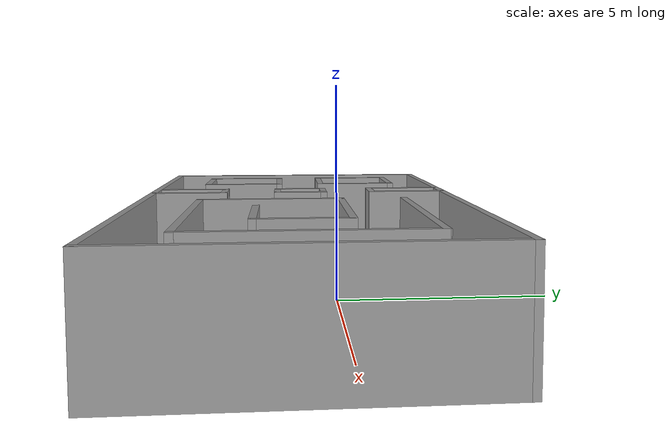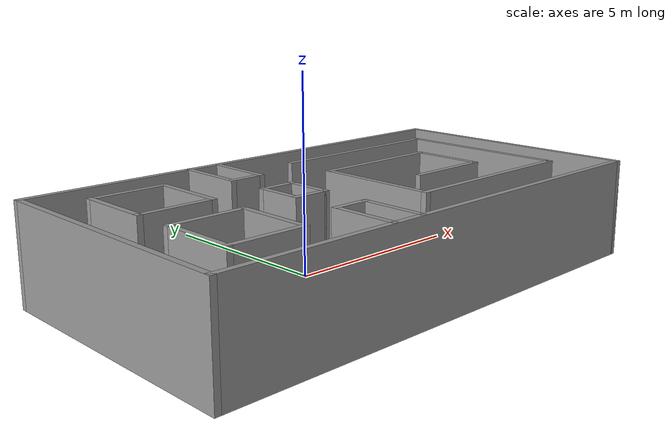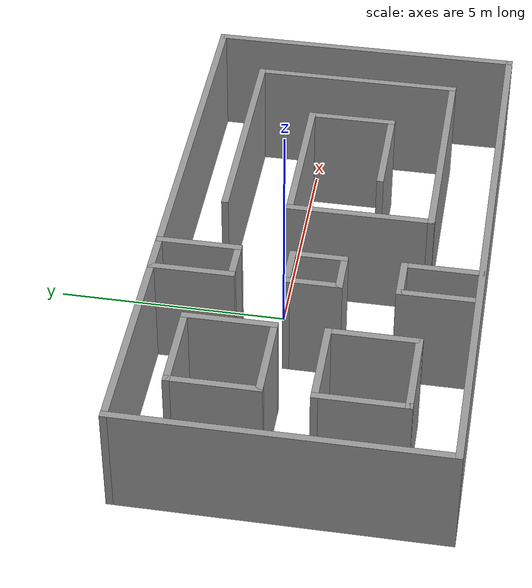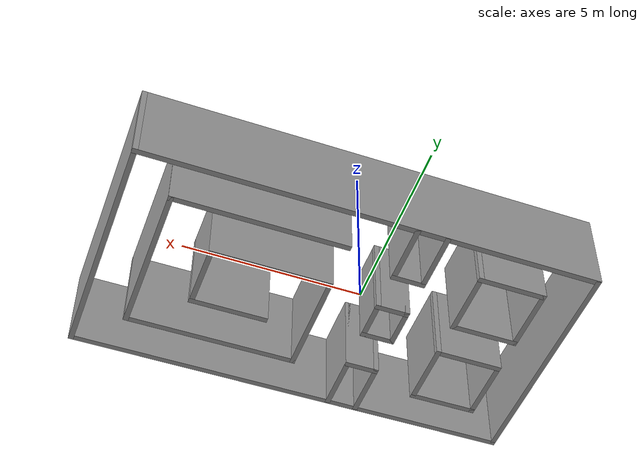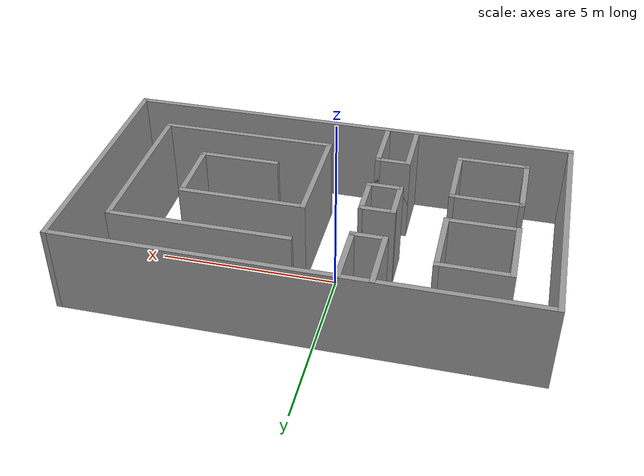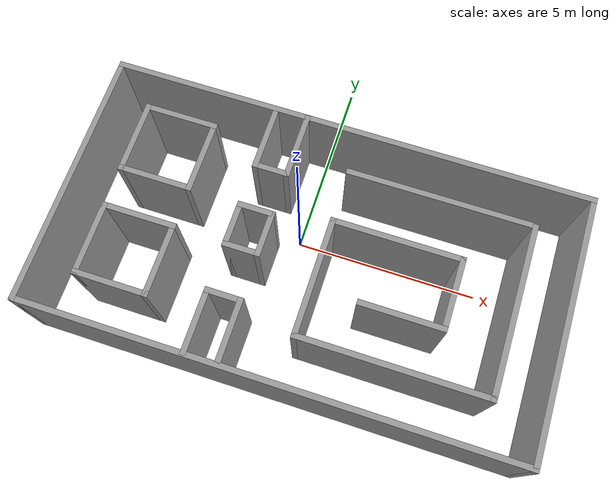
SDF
<?xml version='1.0'?>
<sdf version='1.6'>
  <model name='MazeMap'>
    <pose frame=''>0.55977 -0.836011 0 0 -0 0</pose>
    <link name='Wall_10'>
      <collision name='Wall_10_Collision'>
        <geometry>
          <box>
            <size>2 0.15 2.5</size>
          </box>
        </geometry>
        <pose frame=''>0 0 1.25 0 -0 0</pose>
      </collision>
      <visual name='Wall_10_Visual'>
        <pose frame=''>0 0 1.25 0 -0 0</pose>
        <geometry>
          <box>
            <size>2 0.15 2.5</size>
          </box>
        </geometry>
        <material>
          <script>
            <uri>file://media/materials/scripts/gazebo.material</uri>
            <name>Gazebo/Grey</name>
          </script>
          <ambient>1 1 1 1</ambient>
        </material>
      </visual>
      <pose frame=''>-3.41573 1.51218 0 0 -0 1.5708</pose>
    </link>
    <link name='Wall_11'>
      <collision name='Wall_11_Collision'>
        <geometry>
          <box>
            <size>2 0.15 2.5</size>
          </box>
        </geometry>
        <pose frame=''>0 0 1.25 0 -0 0</pose>
      </collision>
      <visual name='Wall_11_Visual'>
        <pose frame=''>0 0 1.25 0 -0 0</pose>
        <geometry>
          <box>
            <size>2 0.15 2.5</size>
          </box>
        </geometry>
        <material>
          <script>
            <uri>file://media/materials/scripts/gazebo.material</uri>
            <name>Gazebo/Grey</name>
          </script>
          <ambient>1 1 1 1</ambient>
        </material>
      </visual>
      <pose frame=''>-4.34073 2.43718 0 0 -0 3.14159</pose>
    </link>
    <link name='Wall_13'>
      <collision name='Wall_13_Collision'>
        <geometry>
          <box>
            <size>2 0.15 2.5</size>
          </box>
        </geometry>
        <pose frame=''>0 0 1.25 0 -0 0</pose>
      </collision>
      <visual name='Wall_13_Visual'>
        <pose frame=''>0 0 1.25 0 -0 0</pose>
        <geometry>
          <box>
            <size>2 0.15 2.5</size>
          </box>
        </geometry>
        <material>
          <script>
            <uri>file://media/materials/scripts/gazebo.material</uri>
            <name>Gazebo/Grey</name>
          </script>
          <ambient>1 1 1 1</ambient>
        </material>
      </visual>
      <pose frame=''>-5.26573 -1.4254 0 0 0 -1.5708</pose>
    </link>
    <link name='Wall_14'>
      <collision name='Wall_14_Collision'>
        <geometry>
          <box>
            <size>2 0.15 2.5</size>
          </box>
        </geometry>
        <pose frame=''>0 0 1.25 0 -0 0</pose>
      </collision>
      <visual name='Wall_14_Visual'>
        <pose frame=''>0 0 1.25 0 -0 0</pose>
        <geometry>
          <box>
            <size>2 0.15 2.5</size>
          </box>
        </geometry>
        <material>
          <script>
            <uri>file://media/materials/scripts/gazebo.material</uri>
            <name>Gazebo/Grey</name>
          </script>
          <ambient>1 1 1 1</ambient>
        </material>
      </visual>
      <pose frame=''>-4.34073 -2.3504 0 0 -0 0</pose>
    </link>
    <link name='Wall_15'>
      <collision name='Wall_15_Collision'>
        <geometry>
          <box>
            <size>2 0.15 2.5</size>
          </box>
        </geometry>
        <pose frame=''>0 0 1.25 0 -0 0</pose>
      </collision>
      <visual name='Wall_15_Visual'>
        <pose frame=''>0 0 1.25 0 -0 0</pose>
        <geometry>
          <box>
            <size>2 0.15 2.5</size>
          </box>
        </geometry>
        <material>
          <script>
            <uri>file://media/materials/scripts/gazebo.material</uri>
            <name>Gazebo/Grey</name>
          </script>
          <ambient>1 1 1 1</ambient>
        </material>
      </visual>
      <pose frame=''>-3.41573 -1.4254 0 0 -0 1.5708</pose>
    </link>
    <link name='Wall_16'>
      <collision name='Wall_16_Collision'>
        <geometry>
          <box>
            <size>2 0.15 2.5</size>
          </box>
        </geometry>
        <pose frame=''>0 0 1.25 0 -0 0</pose>
      </collision>
      <visual name='Wall_16_Visual'>
        <pose frame=''>0 0 1.25 0 -0 0</pose>
        <geometry>
          <box>
            <size>2 0.15 2.5</size>
          </box>
        </geometry>
        <material>
          <script>
            <uri>file://media/materials/scripts/gazebo.material</uri>
            <name>Gazebo/Grey</name>
          </script>
          <ambient>1 1 1 1</ambient>
        </material>
      </visual>
      <pose frame=''>-4.34073 -0.500403 0 0 -0 3.14159</pose>
    </link>
    <link name='Wall_18'>
      <collision name='Wall_18_Collision'>
        <geometry>
          <box>
            <size>1.83649 0.15 2.5</size>
          </box>
        </geometry>
        <pose frame=''>0 0 1.25 0 -0 0</pose>
      </collision>
      <visual name='Wall_18_Visual'>
        <pose frame=''>0 0 1.25 0 -0 0</pose>
        <geometry>
          <box>
            <size>1.83649 0.15 2.5</size>
          </box>
        </geometry>
        <material>
          <script>
            <uri>file://media/materials/scripts/gazebo.material</uri>
            <name>Gazebo/Grey</name>
          </script>
          <ambient>1 1 1 1</ambient>
        </material>
      </visual>
      <pose frame=''>-2.02744 2.56542 0 0 0 -1.5708</pose>
    </link>
    <link name='Wall_19'>
      <collision name='Wall_19_Collision'>
        <geometry>
          <box>
            <size>1 0.15 2.5</size>
          </box>
        </geometry>
        <pose frame=''>0 0 1.25 0 -0 0</pose>
      </collision>
      <visual name='Wall_19_Visual'>
        <pose frame=''>0 0 1.25 0 -0 0</pose>
        <geometry>
          <box>
            <size>1 0.15 2.5</size>
          </box>
        </geometry>
        <material>
          <script>
            <uri>file://media/materials/scripts/gazebo.material</uri>
            <name>Gazebo/Grey</name>
          </script>
          <ambient>1 1 1 1</ambient>
        </material>
      </visual>
      <pose frame=''>-1.60244 1.72218 0 0 -0 0</pose>
    </link>
    <link name='Wall_20'>
      <collision name='Wall_20_Collision'>
        <geometry>
          <box>
            <size>1.83649 0.15 2.5</size>
          </box>
        </geometry>
        <pose frame=''>0 0 1.25 0 -0 0</pose>
      </collision>
      <visual name='Wall_20_Visual'>
        <pose frame=''>0 0 1.25 0 -0 0</pose>
        <geometry>
          <box>
            <size>1.83649 0.15 2.5</size>
          </box>
        </geometry>
        <material>
          <script>
            <uri>file://media/materials/scripts/gazebo.material</uri>
            <name>Gazebo/Grey</name>
          </script>
          <ambient>1 1 1 1</ambient>
        </material>
      </visual>
      <pose frame=''>-1.17744 2.56542 0 0 -0 1.5708</pose>
    </link>
    <link name='Wall_22'>
      <collision name='Wall_22_Collision'>
        <geometry>
          <box>
            <size>5 0.15 2.5</size>
          </box>
        </geometry>
        <pose frame=''>0 0 1.25 0 -0 0</pose>
      </collision>
      <visual name='Wall_22_Visual'>
        <pose frame=''>0 0 1.25 0 -0 0</pose>
        <geometry>
          <box>
            <size>5 0.15 2.5</size>
          </box>
        </geometry>
        <material>
          <script>
            <uri>file://media/materials/scripts/gazebo.material</uri>
            <name>Gazebo/Grey</name>
          </script>
          <ambient>1 1 1 1</ambient>
        </material>
      </visual>
      <pose frame=''>2.74801 2.27527 0 0 -0 0</pose>
    </link>
    <link name='Wall_23'>
      <collision name='Wall_23_Collision'>
        <geometry>
          <box>
            <size>4.60678 0.15 2.5</size>
          </box>
        </geometry>
        <pose frame=''>0 0 1.25 0 -0 0</pose>
      </collision>
      <visual name='Wall_23_Visual'>
        <pose frame=''>0 0 1.25 0 -0 0</pose>
        <geometry>
          <box>
            <size>4.60678 0.15 2.5</size>
          </box>
        </geometry>
        <material>
          <script>
            <uri>file://media/materials/scripts/gazebo.material</uri>
            <name>Gazebo/Grey</name>
          </script>
          <ambient>1 1 1 1</ambient>
        </material>
      </visual>
      <pose frame=''>5.17301 0.02375 0 0 0 -1.5708</pose>
    </link>
    <link name='Wall_24'>
      <collision name='Wall_24_Collision'>
        <geometry>
          <box>
            <size>5 0.15 2.5</size>
          </box>
        </geometry>
        <pose frame=''>0 0 1.25 0 -0 0</pose>
      </collision>
      <visual name='Wall_24_Visual'>
        <pose frame=''>0 0 1.25 0 -0 0</pose>
        <geometry>
          <box>
            <size>5 0.15 2.5</size>
          </box>
        </geometry>
        <material>
          <script>
            <uri>file://media/materials/scripts/gazebo.material</uri>
            <name>Gazebo/Grey</name>
          </script>
          <ambient>1 1 1 1</ambient>
        </material>
      </visual>
      <pose frame=''>2.74801 -2.20464 0 0 -0 3.14159</pose>
    </link>
    <link name='Wall_25'>
      <collision name='Wall_25_Collision'>
        <geometry>
          <box>
            <size>3.22243 0.15 2.5</size>
          </box>
        </geometry>
        <pose frame=''>0 0 1.25 0 -0 0</pose>
      </collision>
      <visual name='Wall_25_Visual'>
        <pose frame=''>0 0 1.25 0 -0 0</pose>
        <geometry>
          <box>
            <size>3.22243 0.15 2.5</size>
          </box>
        </geometry>
        <material>
          <script>
            <uri>file://media/materials/scripts/gazebo.material</uri>
            <name>Gazebo/Grey</name>
          </script>
          <ambient>1 1 1 1</ambient>
        </material>
      </visual>
      <pose frame=''>0.323006 -0.668424 0 0 -0 1.5708</pose>
    </link>
    <link name='Wall_27'>
      <collision name='Wall_27_Collision'>
        <geometry>
          <box>
            <size>3.5 0.15 2.5</size>
          </box>
        </geometry>
        <pose frame=''>0 0 1.25 0 -0 0</pose>
      </collision>
      <visual name='Wall_27_Visual'>
        <pose frame=''>0 0 1.25 0 -0 0</pose>
        <geometry>
          <box>
            <size>3.5 0.15 2.5</size>
          </box>
        </geometry>
        <material>
          <script>
            <uri>file://media/materials/scripts/gazebo.material</uri>
            <name>Gazebo/Grey</name>
          </script>
          <ambient>1 1 1 1</ambient>
        </material>
      </visual>
      <pose frame=''>1.99801 0.867793 0 0 -0 0</pose>
    </link>
    <link name='Wall_28'>
      <collision name='Wall_28_Collision'>
        <geometry>
          <box>
            <size>1.97243 0.15 2.5</size>
          </box>
        </geometry>
        <pose frame=''>0 0 1.25 0 -0 0</pose>
      </collision>
      <visual name='Wall_28_Visual'>
        <pose frame=''>0 0 1.25 0 -0 0</pose>
        <geometry>
          <box>
            <size>1.97243 0.15 2.5</size>
          </box>
        </geometry>
        <material>
          <script>
            <uri>file://media/materials/scripts/gazebo.material</uri>
            <name>Gazebo/Grey</name>
          </script>
          <ambient>1 1 1 1</ambient>
        </material>
      </visual>
      <pose frame=''>3.67301 -0.043424 0 0 0 -1.5708</pose>
    </link>
    <link name='Wall_29'>
      <collision name='Wall_29_Collision'>
        <geometry>
          <box>
            <size>2.25 0.15 2.5</size>
          </box>
        </geometry>
        <pose frame=''>0 0 1.25 0 -0 0</pose>
      </collision>
      <visual name='Wall_29_Visual'>
        <pose frame=''>0 0 1.25 0 -0 0</pose>
        <geometry>
          <box>
            <size>2.25 0.15 2.5</size>
          </box>
        </geometry>
        <material>
          <script>
            <uri>file://media/materials/scripts/gazebo.material</uri>
            <name>Gazebo/Grey</name>
          </script>
          <ambient>1 1 1 1</ambient>
        </material>
      </visual>
      <pose frame=''>2.62301 -0.95464 0 0 -0 3.14159</pose>
    </link>
    <link name='Wall_3'>
      <collision name='Wall_3_Collision'>
        <geometry>
          <box>
            <size>7 0.15 2.5</size>
          </box>
        </geometry>
        <pose frame=''>0 0 1.25 0 -0 0</pose>
      </collision>
      <visual name='Wall_3_Visual'>
        <pose frame=''>0 0 1.25 0 -0 0</pose>
        <geometry>
          <box>
            <size>7 0.15 2.5</size>
          </box>
        </geometry>
        <material>
          <script>
            <uri>file://media/materials/scripts/gazebo.material</uri>
            <name>Gazebo/Grey</name>
          </script>
          <ambient>1 1 1 1</ambient>
        </material>
      </visual>
      <pose frame=''>-6.425 0 0 0 0 -1.5708</pose>
    </link>
    <link name='Wall_31'>
      <collision name='Wall_31_Collision'>
        <geometry>
          <box>
            <size>1.75 0.15 2.5</size>
          </box>
        </geometry>
        <pose frame=''>0 0 1.25 0 -0 0</pose>
      </collision>
      <visual name='Wall_31_Visual'>
        <pose frame=''>0 0 1.25 0 -0 0</pose>
        <geometry>
          <box>
            <size>1.75 0.15 2.5</size>
          </box>
        </geometry>
        <material>
          <script>
            <uri>file://media/materials/scripts/gazebo.material</uri>
            <name>Gazebo/Grey</name>
          </script>
          <ambient>1 1 1 1</ambient>
        </material>
      </visual>
      <pose frame=''>-2.02744 -2.59173 0 0 -0 1.5708</pose>
    </link>
    <link name='Wall_32'>
      <collision name='Wall_32_Collision'>
        <geometry>
          <box>
            <size>1 0.15 2.5</size>
          </box>
        </geometry>
        <pose frame=''>0 0 1.25 0 -0 0</pose>
      </collision>
      <visual name='Wall_32_Visual'>
        <pose frame=''>0 0 1.25 0 -0 0</pose>
        <geometry>
          <box>
            <size>1 0.15 2.5</size>
          </box>
        </geometry>
        <material>
          <script>
            <uri>file://media/materials/scripts/gazebo.material</uri>
            <name>Gazebo/Grey</name>
          </script>
          <ambient>1 1 1 1</ambient>
        </material>
      </visual>
      <pose frame=''>-1.60244 -1.79173 0 0 -0 0</pose>
    </link>
    <link name='Wall_33'>
      <collision name='Wall_33_Collision'>
        <geometry>
          <box>
            <size>1.75 0.15 2.5</size>
          </box>
        </geometry>
        <pose frame=''>0 0 1.25 0 -0 0</pose>
      </collision>
      <visual name='Wall_33_Visual'>
        <pose frame=''>0 0 1.25 0 -0 0</pose>
        <geometry>
          <box>
            <size>1.75 0.15 2.5</size>
          </box>
        </geometry>
        <material>
          <script>
            <uri>file://media/materials/scripts/gazebo.material</uri>
            <name>Gazebo/Grey</name>
          </script>
          <ambient>1 1 1 1</ambient>
        </material>
      </visual>
      <pose frame=''>-1.17744 -2.59173 0 0 0 -1.5708</pose>
    </link>
    <link name='Wall_35'>
      <collision name='Wall_35_Collision'>
        <geometry>
          <box>
            <size>1.25 0.15 2.5</size>
          </box>
        </geometry>
        <pose frame=''>0 0 1.25 0 -0 0</pose>
      </collision>
      <visual name='Wall_35_Visual'>
        <pose frame=''>0 0 1.25 0 -0 0</pose>
        <geometry>
          <box>
            <size>1.25 0.15 2.5</size>
          </box>
        </geometry>
        <material>
          <script>
            <uri>file://media/materials/scripts/gazebo.material</uri>
            <name>Gazebo/Grey</name>
          </script>
          <ambient>1 1 1 1</ambient>
        </material>
      </visual>
      <pose frame=''>-2.02744 0.013605 0 0 0 -1.5708</pose>
    </link>
    <link name='Wall_36'>
      <collision name='Wall_36_Collision'>
        <geometry>
          <box>
            <size>1 0.15 2.5</size>
          </box>
        </geometry>
        <pose frame=''>0 0 1.25 0 -0 0</pose>
      </collision>
      <visual name='Wall_36_Visual'>
        <pose frame=''>0 0 1.25 0 -0 0</pose>
        <geometry>
          <box>
            <size>1 0.15 2.5</size>
          </box>
        </geometry>
        <material>
          <script>
            <uri>file://media/materials/scripts/gazebo.material</uri>
            <name>Gazebo/Grey</name>
          </script>
          <ambient>1 1 1 1</ambient>
        </material>
      </visual>
      <pose frame=''>-1.60244 -0.536395 0 0 -0 0</pose>
    </link>
    <link name='Wall_37'>
      <collision name='Wall_37_Collision'>
        <geometry>
          <box>
            <size>1.25 0.15 2.5</size>
          </box>
        </geometry>
        <pose frame=''>0 0 1.25 0 -0 0</pose>
      </collision>
      <visual name='Wall_37_Visual'>
        <pose frame=''>0 0 1.25 0 -0 0</pose>
        <geometry>
          <box>
            <size>1.25 0.15 2.5</size>
          </box>
        </geometry>
        <material>
          <script>
            <uri>file://media/materials/scripts/gazebo.material</uri>
            <name>Gazebo/Grey</name>
          </script>
          <ambient>1 1 1 1</ambient>
        </material>
      </visual>
      <pose frame=''>-1.17744 0.013605 0 0 -0 1.5708</pose>
    </link>
    <link name='Wall_38'>
      <collision name='Wall_38_Collision'>
        <geometry>
          <box>
            <size>1 0.15 2.5</size>
          </box>
        </geometry>
        <pose frame=''>0 0 1.25 0 -0 0</pose>
      </collision>
      <visual name='Wall_38_Visual'>
        <pose frame=''>0 0 1.25 0 -0 0</pose>
        <geometry>
          <box>
            <size>1 0.15 2.5</size>
          </box>
        </geometry>
        <material>
          <script>
            <uri>file://media/materials/scripts/gazebo.material</uri>
            <name>Gazebo/Grey</name>
          </script>
          <ambient>1 1 1 1</ambient>
        </material>
      </visual>
      <pose frame=''>-1.60244 0.563605 0 0 -0 3.14159</pose>
    </link>
    <link name='Wall_4'>
      <collision name='Wall_4_Collision'>
        <geometry>
          <box>
            <size>13 0.15 2.5</size>
          </box>
        </geometry>
        <pose frame=''>0 0 1.25 0 -0 0</pose>
      </collision>
      <visual name='Wall_4_Visual'>
        <pose frame=''>0 0 1.25 0 -0 0</pose>
        <geometry>
          <box>
            <size>13 0.15 2.5</size>
          </box>
        </geometry>
        <material>
          <script>
            <uri>file://media/materials/scripts/gazebo.material</uri>
            <name>Gazebo/Grey</name>
          </script>
          <ambient>1 1 1 1</ambient>
        </material>
      </visual>
      <pose frame=''>0 -3.425 0 0 -0 0</pose>
    </link>
    <link name='Wall_5'>
      <collision name='Wall_5_Collision'>
        <geometry>
          <box>
            <size>7 0.15 2.5</size>
          </box>
        </geometry>
        <pose frame=''>0 0 1.25 0 -0 0</pose>
      </collision>
      <visual name='Wall_5_Visual'>
        <pose frame=''>0 0 1.25 0 -0 0</pose>
        <geometry>
          <box>
            <size>7 0.15 2.5</size>
          </box>
        </geometry>
        <material>
          <script>
            <uri>file://media/materials/scripts/gazebo.material</uri>
            <name>Gazebo/Grey</name>
          </script>
          <ambient>1 1 1 1</ambient>
        </material>
      </visual>
      <pose frame=''>6.425 0 0 0 -0 1.5708</pose>
    </link>
    <link name='Wall_6'>
      <collision name='Wall_6_Collision'>
        <geometry>
          <box>
            <size>13 0.15 2.5</size>
          </box>
        </geometry>
        <pose frame=''>0 0 1.25 0 -0 0</pose>
      </collision>
      <visual name='Wall_6_Visual'>
        <pose frame=''>0 0 1.25 0 -0 0</pose>
        <geometry>
          <box>
            <size>13 0.15 2.5</size>
          </box>
        </geometry>
        <material>
          <script>
            <uri>file://media/materials/scripts/gazebo.material</uri>
            <name>Gazebo/Grey</name>
          </script>
          <ambient>1 1 1 1</ambient>
        </material>
      </visual>
      <pose frame=''>0 3.425 0 0 -0 3.14159</pose>
    </link>
    <link name='Wall_8'>
      <collision name='Wall_8_Collision'>
        <geometry>
          <box>
            <size>2 0.15 2.5</size>
          </box>
        </geometry>
        <pose frame=''>0 0 1.25 0 -0 0</pose>
      </collision>
      <visual name='Wall_8_Visual'>
        <pose frame=''>0 0 1.25 0 -0 0</pose>
        <geometry>
          <box>
            <size>2 0.15 2.5</size>
          </box>
        </geometry>
        <material>
          <script>
            <uri>file://media/materials/scripts/gazebo.material</uri>
            <name>Gazebo/Grey</name>
          </script>
          <ambient>1 1 1 1</ambient>
        </material>
      </visual>
      <pose frame=''>-5.26573 1.51218 0 0 0 -1.5708</pose>
    </link>
    <link name='Wall_9'>
      <collision name='Wall_9_Collision'>
        <geometry>
          <box>
            <size>2 0.15 2.5</size>
          </box>
        </geometry>
        <pose frame=''>0 0 1.25 0 -0 0</pose>
      </collision>
      <visual name='Wall_9_Visual'>
        <pose frame=''>0 0 1.25 0 -0 0</pose>
        <geometry>
          <box>
            <size>2 0.15 2.5</size>
          </box>
        </geometry>
        <material>
          <script>
            <uri>file://media/materials/scripts/gazebo.material</uri>
            <name>Gazebo/Grey</name>
          </script>
          <ambient>1 1 1 1</ambient>
        </material>
      </visual>
      <pose frame=''>-4.34073 0.587184 0 0 -0 0</pose>
    </link>
    <static>1</static>
  </model>
</sdf>
